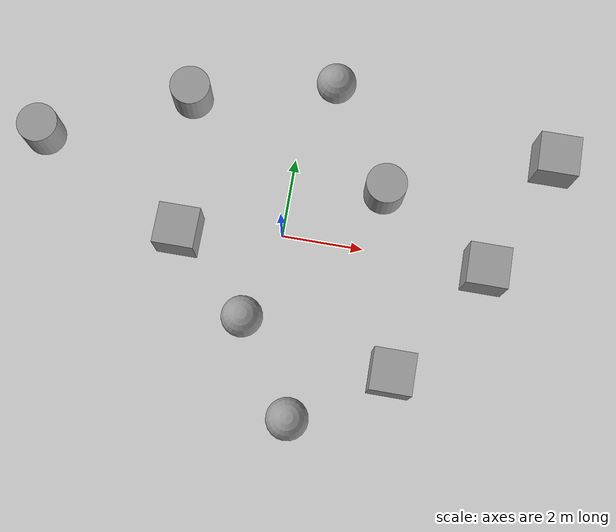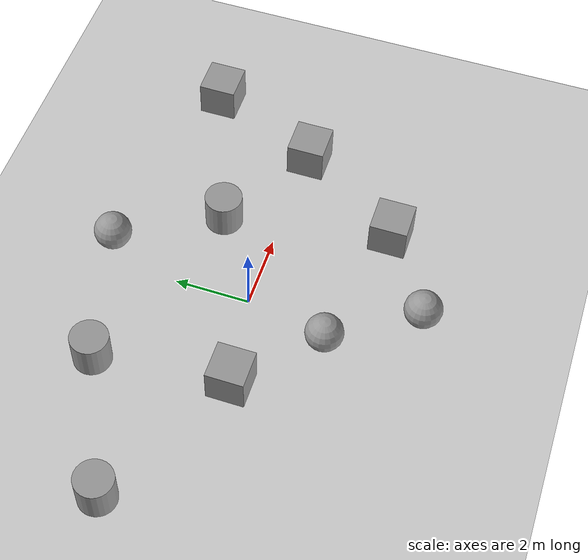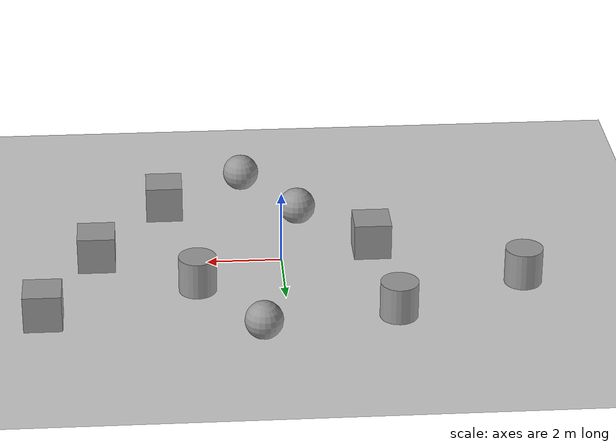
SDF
<sdf version="1.6">
 <world name="default">
  <light name="sun" type="directional">
   <pose>0 0 10 0 -0 0</pose>
   <diffuse>0.8 0.8 0.8 1</diffuse>
   <specular>0.2 0.2 0.2 1</specular>
   <attenuation>
    <range>1000</range>
    <constant>0.9</constant>
    <linear>0.01</linear>
    <quadratic>0.001</quadratic>
   </attenuation>
   <direction>-0.5 0.5 -0.9</direction>
  </light>
  <model name="ground_plane">
   <static>1</static>
   <link name="link">
    <collision name="collision">
     <geometry><plane><normal>0 0 1</normal><size>100 100</size></plane></geometry>
     <surface><friction><ode><mu>100</mu><mu2>50</mu2></ode></friction></surface>
    </collision>
    <visual name="visual">
     <cast_shadows>0</cast_shadows>
     <geometry><plane><normal>0 0 1</normal><size>100 100</size></plane></geometry>
     <material>
      <script><uri>file://media/materials/scripts/gazebo.material</uri><name>Gazebo/Grey</name></script>
     </material>
    </visual>
   </link>
  </model>
  <gravity>0 0 -9.8</gravity>
  <magnetic_field>6e-06 2.3e-05 -4.2e-05</magnetic_field>
  <atmosphere type="adiabatic"/>
  <physics name="default_physics" default="0" type="ode">
   <max_step_size>0.001</max_step_size>
   <real_time_factor>1</real_time_factor>
   <real_time_update_rate>1000</real_time_update_rate>
  </physics>
  <scene><ambient>0.4 0.4 0.4 1</ambient><background>0.7 0.7 0.7 1</background><shadows>1</shadows></scene>
  <spherical_coordinates>
   <surface_model>EARTH_WGS84</surface_model>
   <latitude_deg>0</latitude_deg>
   <longitude_deg>0</longitude_deg>
   <elevation>0</elevation>
   <heading_deg>0</heading_deg>
  </spherical_coordinates>
  <model name="unit_box_0">
   <pose>-2.4698 -0.390629 0.499995 -1e-05 0 0</pose>
   <link name="link">
    <inertial>
     <mass>1</mass>
     <inertia>
      <ixx>0.166667</ixx>
      <ixy>0</ixy>
      <ixz>0</ixz>
      <iyy>0.166667</iyy>
      <iyz>0</iyz>
      <izz>0.166667</izz>
     </inertia>
    </inertial>
    <collision name="collision"><geometry><box><size>1 1 1</size></box></geometry></collision>
    <visual name="visual">
     <geometry><box><size>1 1 1</size></box></geometry>
     <material>
      <script><name>Gazebo/Grey</name><uri>file://media/materials/scripts/gazebo.material</uri></script>
     </material>
    </visual>
   </link>
  </model>
  <model name="unit_sphere_0">
   <pose>-0.571958 -2.19951 0.5 0 -0 0</pose>
   <link name="link">
    <inertial>
     <mass>1</mass>
     <inertia><ixx>0.1</ixx><ixy>0</ixy><ixz>0</ixz><iyy>0.1</iyy><iyz>0</iyz><izz>0.1</izz></inertia>
    </inertial>
    <collision name="collision"><geometry><sphere><radius>0.5</radius></sphere></geometry></collision>
    <visual name="visual">
     <geometry><sphere><radius>0.5</radius></sphere></geometry>
     <material>
      <script><name>Gazebo/Grey</name><uri>file://media/materials/scripts/gazebo.material</uri></script>
     </material>
    </visual>
   </link>
  </model>
  <model name="unit_cylinder_0">
   <pose>-2.84984 3.15442 0.499998 3e-06 -4e-06 0</pose>
   <link name="link">
    <inertial>
     <mass>1</mass>
     <inertia><ixx>0.145833</ixx><ixy>0</ixy><ixz>0</ixz><iyy>0.145833</iyy><iyz>0</iyz><izz>0.125</izz></inertia>
    </inertial>
    <collision name="collision">
     <geometry><cylinder><radius>0.5</radius><length>1</length></cylinder></geometry>
    </collision>
    <visual name="visual">
     <geometry><cylinder><radius>0.5</radius><length>1</length></cylinder></geometry>
     <material>
      <script><name>Gazebo/Grey</name><uri>file://media/materials/scripts/gazebo.material</uri></script>
     </material>
    </visual>
   </link>
  </model>
  <model name="unit_box_1">
   <pose>3.10487 -2.93256 0.499995 0 1e-05 0</pose>
   <link name="link">
    <inertial>
     <mass>1</mass>
     <inertia>
      <ixx>0.166667</ixx>
      <ixy>0</ixy>
      <ixz>0</ixz>
      <iyy>0.166667</iyy>
      <iyz>0</iyz>
      <izz>0.166667</izz>
     </inertia>
    </inertial>
    <collision name="collision"><geometry><box><size>1 1 1</size></box></geometry></collision>
    <visual name="visual">
     <geometry><box><size>1 1 1</size></box></geometry>
     <material>
      <script><name>Gazebo/Grey</name><uri>file://media/materials/scripts/gazebo.material</uri></script>
     </material>
    </visual>
   </link>
  </model>
  <model name="unit_sphere_1">
   <pose>0.892014 -4.37165 0.5 0 -0 0</pose>
   <link name="link">
    <inertial>
     <mass>1</mass>
     <inertia><ixx>0.1</ixx><ixy>0</ixy><ixz>0</ixz><iyy>0.1</iyy><iyz>0</iyz><izz>0.1</izz></inertia>
    </inertial>
    <collision name="collision"><geometry><sphere><radius>0.5</radius></sphere></geometry></collision>
    <visual name="visual">
     <geometry><sphere><radius>0.5</radius></sphere></geometry>
     <material>
      <script><name>Gazebo/Grey</name><uri>file://media/materials/scripts/gazebo.material</uri></script>
     </material>
    </visual>
   </link>
  </model>
  <model name="unit_box_2">
   <pose>4.96317 -0.090979 0.499995 0 1e-05 0</pose>
   <link name="link">
    <inertial>
     <mass>1</mass>
     <inertia>
      <ixx>0.166667</ixx>
      <ixy>0</ixy>
      <ixz>0</ixz>
      <iyy>0.166667</iyy>
      <iyz>0</iyz>
      <izz>0.166667</izz>
     </inertia>
    </inertial>
    <collision name="collision"><geometry><box><size>1 1 1</size></box></geometry></collision>
    <visual name="visual">
     <geometry><box><size>1 1 1</size></box></geometry>
     <material>
      <script><name>Gazebo/Grey</name><uri>file://media/materials/scripts/gazebo.material</uri></script>
     </material>
    </visual>
   </link>
  </model>
  <model name="unit_cylinder_1">
   <pose>2.30102 1.48306 0.499993 -3e-06 -3e-06 0</pose>
   <link name="link">
    <inertial>
     <mass>1</mass>
     <inertia><ixx>0.145833</ixx><ixy>0</ixy><ixz>0</ixz><iyy>0.145833</iyy><iyz>0</iyz><izz>0.125</izz></inertia>
    </inertial>
    <collision name="collision">
     <geometry><cylinder><radius>0.5</radius><length>1</length></cylinder></geometry>
    </collision>
    <visual name="visual">
     <geometry><cylinder><radius>0.5</radius><length>1</length></cylinder></geometry>
     <material>
      <script><name>Gazebo/Grey</name><uri>file://media/materials/scripts/gazebo.material</uri></script>
     </material>
    </visual>
   </link>
  </model>
  <model name="unit_sphere_2">
   <pose>0.687406 4.01692 0.5 0 -0 0</pose>
   <link name="link">
    <inertial>
     <mass>1</mass>
     <inertia><ixx>0.1</ixx><ixy>0</ixy><ixz>0</ixz><iyy>0.1</iyy><iyz>0</iyz><izz>0.1</izz></inertia>
    </inertial>
    <collision name="collision"><geometry><sphere><radius>0.5</radius></sphere></geometry></collision>
    <visual name="visual">
     <geometry><sphere><radius>0.5</radius></sphere></geometry>
     <material>
      <script><name>Gazebo/Grey</name><uri>file://media/materials/scripts/gazebo.material</uri></script>
     </material>
    </visual>
   </link>
  </model>
  <model name="unit_cylinder_2">
   <pose>-6.32542 1.56648 0.499993 -3e-06 -4e-06 -0</pose>
   <link name="link">
    <inertial>
     <mass>1</mass>
     <inertia><ixx>0.145833</ixx><ixy>0</ixy><ixz>0</ixz><iyy>0.145833</iyy><iyz>0</iyz><izz>0.125</izz></inertia>
    </inertial>
    <collision name="collision">
     <geometry><cylinder><radius>0.5</radius><length>1</length></cylinder></geometry>
    </collision>
    <visual name="visual">
     <geometry><cylinder><radius>0.5</radius><length>1</length></cylinder></geometry>
     <material>
      <script><name>Gazebo/Grey</name><uri>file://media/materials/scripts/gazebo.material</uri></script>
     </material>
    </visual>
   </link>
  </model>
  <model name="unit_box_3">
   <pose>6.31184 2.933 0.5 0 -0 0</pose>
   <link name="link">
    <inertial>
     <mass>1</mass>
     <inertia>
      <ixx>0.166667</ixx>
      <ixy>0</ixy>
      <ixz>0</ixz>
      <iyy>0.166667</iyy>
      <iyz>0</iyz>
      <izz>0.166667</izz>
     </inertia>
    </inertial>
    <collision name="collision"><geometry><box><size>1 1 1</size></box></geometry></collision>
    <visual name="visual">
     <geometry><box><size>1 1 1</size></box></geometry>
     <material>
      <script><name>Gazebo/Grey</name><uri>file://media/materials/scripts/gazebo.material</uri></script>
     </material>
    </visual>
   </link>
  </model>
 </world>
</sdf>
